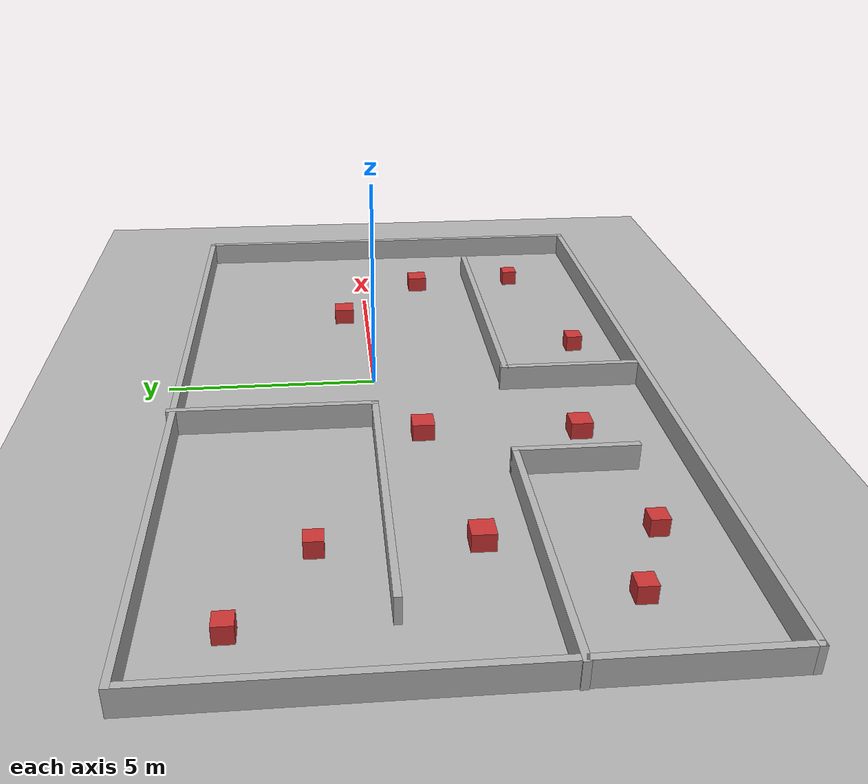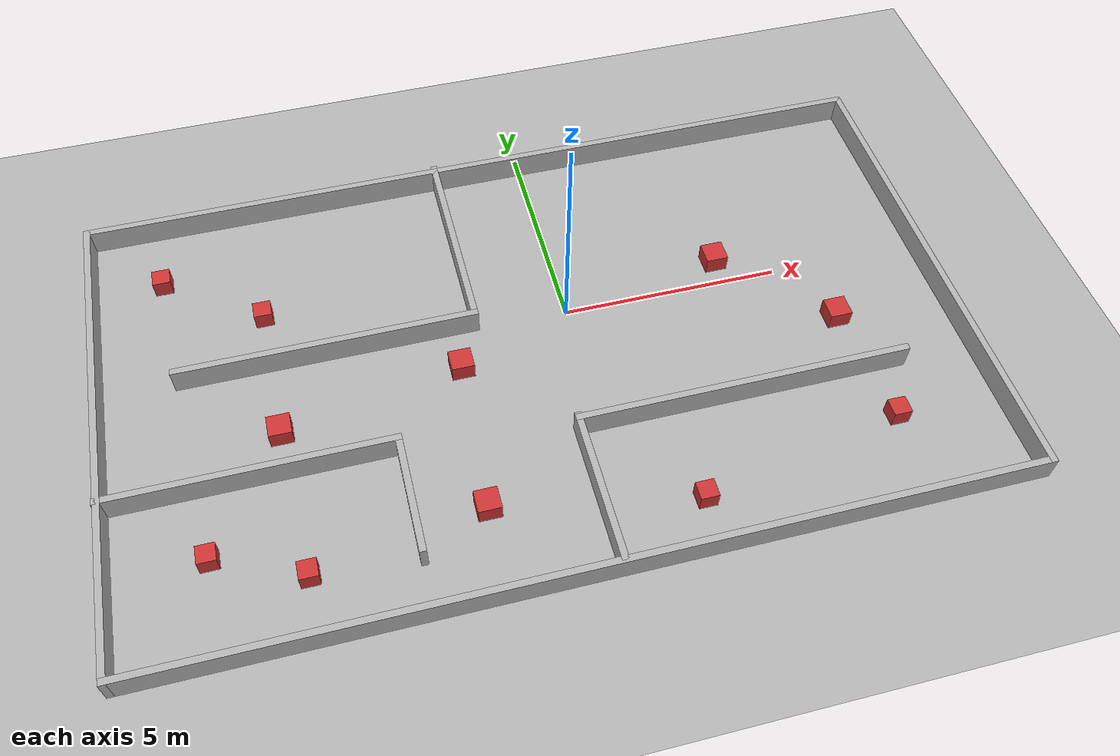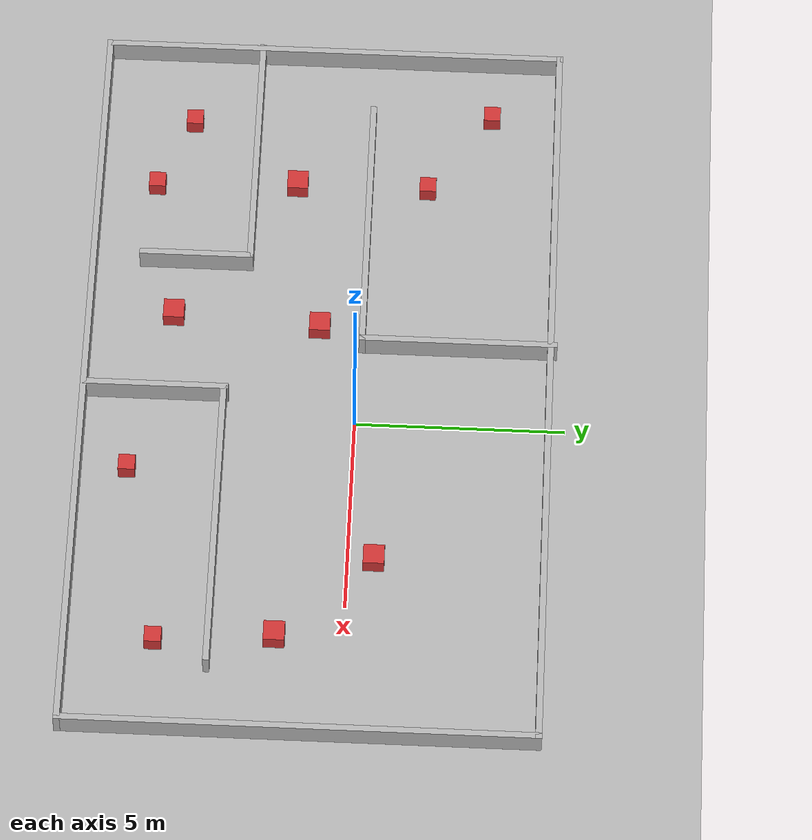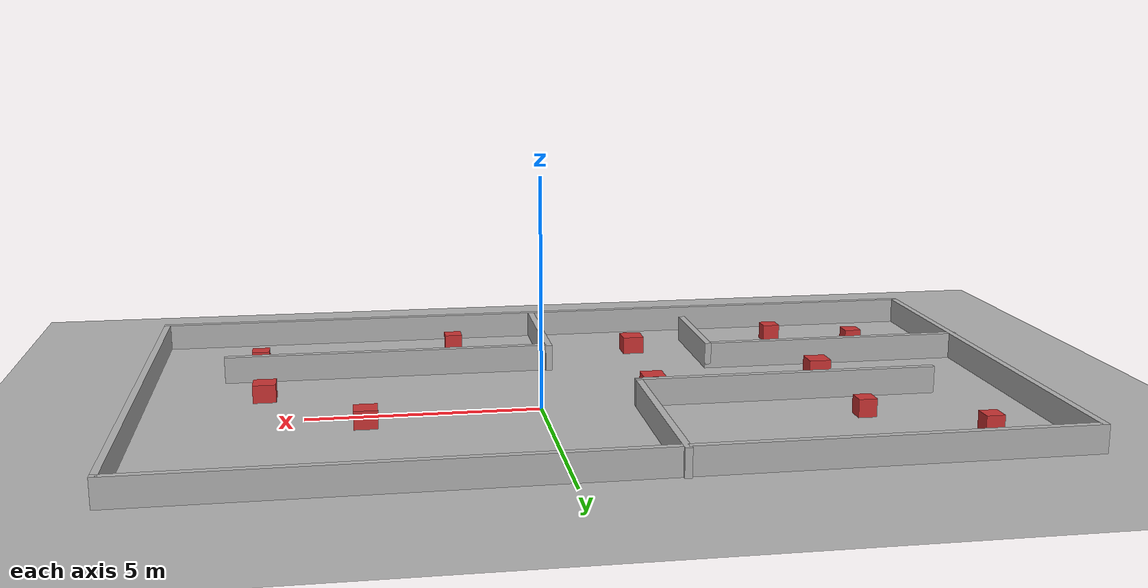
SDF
<sdf version='1.8'>
  <world name='default'>
    <light name='sun' type='directional'>
      <cast_shadows>0</cast_shadows>
      <pose>0 0 10 0 -0 0</pose>
      <diffuse>0.8 0.8 0.8 1</diffuse>
      <specular>0.2 0.2 0.2 1</specular>
      <attenuation>
        <range>1000</range>
        <constant>0.9</constant>
        <linear>0.01</linear>
        <quadratic>0.001</quadratic>
      </attenuation>
      <direction>-0.5 0.1 -0.9</direction>
      <spot>
        <inner_angle>0</inner_angle>
        <outer_angle>0</outer_angle>
        <falloff>0</falloff>
      </spot>
    </light>
    <model name='ground_plane'>
      <static>1</static>
      <link name='link'>
        <collision name='collision'>
          <geometry>
            <plane>
              <normal>0 0 1</normal>
              <size>100 100</size>
            </plane>
          </geometry>
          <surface>
            <friction>
              <ode>
                <mu>100</mu>
                <mu2>50</mu2>
              </ode>
              <torsional>
                <ode/>
              </torsional>
            </friction>
            <contact>
              <ode/>
            </contact>
            <bounce/>
          </surface>
          <max_contacts>10</max_contacts>
        </collision>
        <visual name='visual'>
          <cast_shadows>0</cast_shadows>
          <geometry>
            <plane>
              <normal>0 0 1</normal>
              <size>100 100</size>
            </plane>
          </geometry>
          <material>
            <ambient>0.3 0.3 0.3 1</ambient>
            <diffuse>0.7 0.7 0.7 1</diffuse>
            <specular>0.1 0.1 0.1 1</specular>
          </material>
        </visual>
        <self_collide>0</self_collide>
        <enable_wind>0</enable_wind>
        <kinematic>0</kinematic>
      </link>
    </model>
    <gravity>0 0 -9.8</gravity>
    <magnetic_field>6e-06 2.3e-05 -4.2e-05</magnetic_field>
    <atmosphere type='adiabatic'/>
    <physics type='ode'>
      <max_step_size>0.001</max_step_size>
      <real_time_factor>1</real_time_factor>
      <real_time_update_rate>1000</real_time_update_rate>
    </physics>
    <scene>
      <ambient>0.4 0.4 0.4 1</ambient>
      <background>0.7 0.7 0.7 1</background>
      <shadows>0</shadows>
      <render_engine>ogre2</render_engine>
    </scene>
    <audio>
      <device>default</device>
    </audio>
    <wind/>
    <spherical_coordinates>
      <surface_model>EARTH_WGS84</surface_model>
      <latitude_deg>0</latitude_deg>
      <longitude_deg>0</longitude_deg>
      <elevation>0</elevation>
      <heading_deg>0</heading_deg>
    </spherical_coordinates>
    <model name='room'>
      <pose>-0.972666 -0.903877 0 0 -0 0</pose>
      <link name='outerwall_north'>
        <collision name='outerwall_north_Collision'>
          <geometry>
            <box>
              <size>19 0.15 0.6</size>
            </box>
          </geometry>
          <pose>0 0 0.3 0 -0 0</pose>
          <max_contacts>10</max_contacts>
          <surface>
            <contact>
              <ode/>
            </contact>
            <bounce/>
            <friction>
              <torsional>
                <ode/>
              </torsional>
              <ode/>
            </friction>
          </surface>
        </collision>
        <visual name='outerwall_north_Visual'>
          <pose>0 0 0.3 0 -0 0</pose>
          <geometry>
            <box>
              <size>19 0.15 0.6</size>
            </box>
          </geometry>
          <material>
            <ambient>0.3 0.3 0.3 1</ambient>
            <diffuse>0.7 0.7 0.7 1</diffuse>
            <specular>0.1 0.1 0.1 1</specular>
            <ambient>1 1 1 1</ambient>
          </material>
          <meta>
            <layer>0</layer>
          </meta>
        </visual>
        <pose>0.013921 5.50955 0 0 -0 0</pose>
        <self_collide>0</self_collide>
        <enable_wind>0</enable_wind>
        <kinematic>0</kinematic>
      </link>
      <link name='outerwall_east'>
        <collision name='outerwall_east_Collision'>
          <geometry>
            <box>
              <size>11.25 0.15 0.6</size>
            </box>
          </geometry>
          <pose>0 0 0.3 0 -0 0</pose>
          <max_contacts>10</max_contacts>
          <surface>
            <contact>
              <ode/>
            </contact>
            <bounce/>
            <friction>
              <torsional>
                <ode/>
              </torsional>
              <ode/>
            </friction>
          </surface>
        </collision>
        <visual name='outerwall_east_Visual'>
          <pose>0 0 0.3 0 -0 0</pose>
          <geometry>
            <box>
              <size>11.25 0.15 0.6</size>
            </box>
          </geometry>
          <material>
            <ambient>0.3 0.3 0.3 1</ambient>
            <diffuse>0.7 0.7 0.7 1</diffuse>
            <specular>0.1 0.1 0.1 1</specular>
            <ambient>1 1 1 1</ambient>
          </material>
          <meta>
            <layer>0</layer>
          </meta>
        </visual>
        <pose>9.43892 -0.040455 0 0 -0 -1.5708</pose>
        <self_collide>0</self_collide>
        <enable_wind>0</enable_wind>
        <kinematic>0</kinematic>
      </link>
      <link name='outerwall_south'>
        <collision name='outerwall_south_Collision'>
          <geometry>
            <box>
              <size>19 0.15 0.6</size>
            </box>
          </geometry>
          <pose>0 0 0.3 0 -0 0</pose>
          <max_contacts>10</max_contacts>
          <surface>
            <contact>
              <ode/>
            </contact>
            <bounce/>
            <friction>
              <torsional>
                <ode/>
              </torsional>
              <ode/>
            </friction>
          </surface>
        </collision>
        <visual name='outerwall_south_Visual'>
          <pose>0 0 0.3 0 -0 0</pose>
          <geometry>
            <box>
              <size>19 0.15 0.6</size>
            </box>
          </geometry>
          <material>
            <ambient>0.3 0.3 0.3 1</ambient>
            <diffuse>0.7 0.7 0.7 1</diffuse>
            <specular>0.1 0.1 0.1 1</specular>
            <ambient>1 1 1 1</ambient>
          </material>
          <meta>
            <layer>0</layer>
          </meta>
        </visual>
        <pose>0.013921 -5.59046 0 0 -0 3.14159</pose>
        <self_collide>0</self_collide>
        <enable_wind>0</enable_wind>
        <kinematic>0</kinematic>
      </link>
      <link name='outerwall_west'>
        <collision name='outerwall_west_Collision'>
          <geometry>
            <box>
              <size>11.25 0.15 0.6</size>
            </box>
          </geometry>
          <pose>0 0 0.3 0 -0 0</pose>
          <max_contacts>10</max_contacts>
          <surface>
            <contact>
              <ode/>
            </contact>
            <bounce/>
            <friction>
              <torsional>
                <ode/>
              </torsional>
              <ode/>
            </friction>
          </surface>
        </collision>
        <visual name='outerwall_west_Visual'>
          <pose>0 0 0.3 0 -0 0</pose>
          <geometry>
            <box>
              <size>11.25 0.15 0.6</size>
            </box>
          </geometry>
          <material>
            <ambient>0.3 0.3 0.3 1</ambient>
            <diffuse>0.7 0.7 0.7 1</diffuse>
            <specular>0.1 0.1 0.1 1</specular>
            <ambient>1 1 1 1</ambient>
          </material>
          <meta>
            <layer>0</layer>
          </meta>
        </visual>
        <pose>-9.41108 -0.040455 0 0 -0 1.5708</pose>
        <self_collide>0</self_collide>
        <enable_wind>0</enable_wind>
        <kinematic>0</kinematic>
      </link>
      <link name='room1_wall1'>
        <collision name='room1_wall1_Collision'>
          <geometry>
            <box>
              <size>4.75 0.15 0.6</size>
            </box>
          </geometry>
          <pose>0 0 0.3 0 -0 0</pose>
          <max_contacts>10</max_contacts>
          <surface>
            <contact>
              <ode/>
            </contact>
            <bounce/>
            <friction>
              <torsional>
                <ode/>
              </torsional>
              <ode/>
            </friction>
          </surface>
        </collision>
        <visual name='room1_wall1_Visual'>
          <pose>0 0 0.3 0 -0 0</pose>
          <geometry>
            <box>
              <size>4.75 0.15 0.6</size>
            </box>
          </geometry>
          <material>
            <ambient>0.3 0.3 0.3 1</ambient>
            <diffuse>0.7 0.7 0.7 1</diffuse>
            <specular>0.1 0.1 0.1 1</specular>
            <ambient>1 1 1 1</ambient>
          </material>
          <meta>
            <layer>0</layer>
          </meta>
        </visual>
        <pose>-1.11769 3.29046 0 0 -0 -1.5708</pose>
        <self_collide>0</self_collide>
        <enable_wind>0</enable_wind>
        <kinematic>0</kinematic>
      </link>
      <link name='room1_wall2'>
        <collision name='room1_wall2_Collision'>
          <geometry>
            <box>
              <size>6.75 0.15 0.6</size>
            </box>
          </geometry>
          <pose>0 0 0.3 0 -0 0</pose>
          <max_contacts>10</max_contacts>
          <surface>
            <contact>
              <ode/>
            </contact>
            <bounce/>
            <friction>
              <torsional>
                <ode/>
              </torsional>
              <ode/>
            </friction>
          </surface>
        </collision>
        <visual name='room1_wall2_Visual'>
          <pose>0 0 0.3 0 -0 0</pose>
          <geometry>
            <box>
              <size>6.75 0.15 0.6</size>
            </box>
          </geometry>
          <material>
            <ambient>0.3 0.3 0.3 1</ambient>
            <diffuse>0.7 0.7 0.7 1</diffuse>
            <specular>0.1 0.1 0.1 1</specular>
            <ambient>1 1 1 1</ambient>
          </material>
          <meta>
            <layer>0</layer>
          </meta>
        </visual>
        <pose>-4.41769 0.990456 0 0 -0 3.14159</pose>
        <self_collide>0</self_collide>
        <enable_wind>0</enable_wind>
        <kinematic>0</kinematic>
      </link>
      <link name='room3_wall1'>
        <collision name='room3_wall1_Collision'>
          <geometry>
            <box>
              <size>3.47722 0.15 0.6</size>
            </box>
          </geometry>
          <pose>0 0 0.3 0 -0 0</pose>
          <max_contacts>10</max_contacts>
          <surface>
            <contact>
              <ode/>
            </contact>
            <bounce/>
            <friction>
              <torsional>
                <ode/>
              </torsional>
              <ode/>
            </friction>
          </surface>
        </collision>
        <visual name='room3_wall1_Visual'>
          <pose>0 0 0.3 0 -0 0</pose>
          <geometry>
            <box>
              <size>3.47722 0.15 0.6</size>
            </box>
          </geometry>
          <material>
            <ambient>0.3 0.3 0.3 1</ambient>
            <diffuse>0.7 0.7 0.7 1</diffuse>
            <specular>0.1 0.1 0.1 1</specular>
            <ambient>1 1 1 1</ambient>
          </material>
          <meta>
            <layer>0</layer>
          </meta>
        </visual>
        <pose>0.391784 -3.86799 0 0 -0 1.5708</pose>
        <self_collide>0</self_collide>
        <enable_wind>0</enable_wind>
        <kinematic>0</kinematic>
      </link>
      <link name='room3_wall2'>
        <collision name='room3_wall2_Collision'>
          <geometry>
            <box>
              <size>7.5 0.15 0.6</size>
            </box>
          </geometry>
          <pose>0 0 0.3 0 -0 0</pose>
          <max_contacts>10</max_contacts>
          <surface>
            <contact>
              <ode/>
            </contact>
            <bounce/>
            <friction>
              <torsional>
                <ode/>
              </torsional>
              <ode/>
            </friction>
          </surface>
        </collision>
        <visual name='room3_wall2_Visual'>
          <pose>0 0 0.3 0 -0 0</pose>
          <geometry>
            <box>
              <size>7.5 0.15 0.6</size>
            </box>
          </geometry>
          <material>
            <ambient>0.3 0.3 0.3 1</ambient>
            <diffuse>0.7 0.7 0.7 1</diffuse>
            <specular>0.1 0.1 0.1 1</specular>
            <ambient>1 1 1 1</ambient>
          </material>
          <meta>
            <layer>0</layer>
          </meta>
        </visual>
        <pose>4.06678 -2.24484 0 0 -0 0</pose>
        <self_collide>0</self_collide>
        <enable_wind>0</enable_wind>
        <kinematic>0</kinematic>
      </link>
      <link name='room2_wall1'>
        <collision name='room2_wall1_Collision'>
          <geometry>
            <box>
              <size>6.25 0.15 0.6</size>
            </box>
          </geometry>
          <pose>0 0 0.3 0 -0 0</pose>
          <max_contacts>10</max_contacts>
          <surface>
            <contact>
              <ode/>
            </contact>
            <bounce/>
            <friction>
              <torsional>
                <ode/>
              </torsional>
              <ode/>
            </friction>
          </surface>
        </collision>
        <visual name='room2_wall1_Visual'>
          <pose>0 0 0.3 0 -0 0</pose>
          <geometry>
            <box>
              <size>6.25 0.15 0.6</size>
            </box>
          </geometry>
          <material>
            <ambient>0.3 0.3 0.3 1</ambient>
            <diffuse>0.7 0.7 0.7 1</diffuse>
            <specular>0.1 0.1 0.1 1</specular>
            <ambient>1 1 1 1</ambient>
          </material>
          <meta>
            <layer>0</layer>
          </meta>
        </visual>
        <pose>-6.38892 -1.80969 0 0 -0 0</pose>
        <self_collide>0</self_collide>
        <enable_wind>0</enable_wind>
        <kinematic>0</kinematic>
      </link>
      <link name='room2_wall2'>
        <collision name='room2_wall2_Collision'>
          <geometry>
            <box>
              <size>2.75 0.15 0.6</size>
            </box>
          </geometry>
          <pose>0 0 0.3 0 -0 0</pose>
          <max_contacts>10</max_contacts>
          <surface>
            <contact>
              <ode/>
            </contact>
            <bounce/>
            <friction>
              <torsional>
                <ode/>
              </torsional>
              <ode/>
            </friction>
          </surface>
        </collision>
        <visual name='room2_wall2_Visual'>
          <pose>0 0 0.3 0 -0 0</pose>
          <geometry>
            <box>
              <size>2.75 0.15 0.6</size>
            </box>
          </geometry>
          <material>
            <ambient>0.3 0.3 0.3 1</ambient>
            <diffuse>0.7 0.7 0.7 1</diffuse>
            <specular>0.1 0.1 0.1 1</specular>
            <ambient>1 1 1 1</ambient>
          </material>
          <meta>
            <layer>0</layer>
          </meta>
        </visual>
        <pose>-3.33892 -3.10969 0 0 -0 -1.5708</pose>
        <self_collide>0</self_collide>
        <enable_wind>0</enable_wind>
        <kinematic>0</kinematic>
      </link>
      <static>1</static>
    </model>

    <!-- All Obstacles -->
    <model name='obstacles'>
      <pose>0 0 0 0 0 0</pose>

      <!-- Obstacles in Room 1 (top-left) -->
      <link name='obstacle_room1_1'>
        <pose>-8.81957 3.0005 0.2 0 -0 0</pose>
        <collision name='collision'>
          <geometry>
            <box>
              <size>0.4 0.4 0.4</size>
            </box>
          </geometry>
        </collision>
        <visual name='visual'>
          <geometry>
            <box>
              <size>0.4 0.4 0.4</size>
            </box>
          </geometry>
          <material>
            <ambient>0.8 0.2 0.2 1</ambient>
            <diffuse>0.8 0.2 0.2 1</diffuse>
          </material>
        </visual>
      </link>
      <link name='obstacle_room1_2'>
        <pose>-6.67499 1.5 0.2 0 -0 0</pose>
        <collision name='collision'>
          <geometry>
            <box>
              <size>0.4 0.4 0.4</size>
            </box>
          </geometry>
        </collision>
        <visual name='visual'>
          <geometry>
            <box>
              <size>0.4 0.4 0.4</size>
            </box>
          </geometry>
          <material>
            <ambient>0.8 0.2 0.2 1</ambient>
            <diffuse>0.8 0.2 0.2 1</diffuse>
          </material>
        </visual>
      </link>

      <!-- Obstacles in Room 2 (bottom-left) -->
      <link name='obstacle_room2_1'>
        <pose>-6.53219 -5.0941 0.2 0 -0 0</pose>
        <collision name='collision'>
          <geometry>
            <box>
              <size>0.4 0.4 0.4</size>
            </box>
          </geometry>
        </collision>
        <visual name='visual'>
          <geometry>
            <box>
              <size>0.4 0.4 0.4</size>
            </box>
          </geometry>
          <material>
            <ambient>0.8 0.2 0.2 1</ambient>
            <diffuse>0.8 0.2 0.2 1</diffuse>
          </material>
        </visual>
      </link>
      <link name='obstacle_room2_2'>
        <pose>-8.40528 -4.282 0.2 0 -0 0</pose>
        <collision name='collision'>
          <geometry>
            <box>
              <size>0.4 0.4 0.4</size>
            </box>
          </geometry>
        </collision>
        <visual name='visual'>
          <geometry>
            <box>
              <size>0.4 0.4 0.4</size>
            </box>
          </geometry>
          <material>
            <ambient>0.8 0.2 0.2 1</ambient>
            <diffuse>0.8 0.2 0.2 1</diffuse>
          </material>
        </visual>
      </link>

      <!-- Obstacles in Room 3 (bottom-right) -->
      <link name='obstacle_room3_1'>
        <pose>1.5 -5.33035 0.2 0 -0 0</pose>
        <collision name='collision'>
          <geometry>
            <box>
              <size>0.4 0.4 0.4</size>
            </box>
          </geometry>
        </collision>
        <visual name='visual'>
          <geometry>
            <box>
              <size>0.4 0.4 0.4</size>
            </box>
          </geometry>
          <material>
            <ambient>0.8 0.2 0.2 1</ambient>
            <diffuse>0.8 0.2 0.2 1</diffuse>
          </material>
        </visual>
      </link>
      <link name='obstacle_room3_2'>
        <pose>6.10498 -4.42458 0.2 0 -0 0</pose>
        <collision name='collision'>
          <geometry>
            <box>
              <size>0.4 0.4 0.4</size>
            </box>
          </geometry>
        </collision>
        <visual name='visual'>
          <geometry>
            <box>
              <size>0.4 0.4 0.4</size>
            </box>
          </geometry>
          <material>
            <ambient>0.8 0.2 0.2 1</ambient>
            <diffuse>0.8 0.2 0.2 1</diffuse>
          </material>
        </visual>
      </link>

      <!-- Obstacles in main open space (center area) -->
      <link name='obstacle_main_1'>
        <pose>-2.62819 -0.94889 0.2 0 -0 0</pose>
        <collision name='collision'>
          <geometry>
            <box>
              <size>0.5 0.5 0.4</size>
            </box>
          </geometry>
        </collision>
        <visual name='visual'>
          <geometry>
            <box>
              <size>0.5 0.5 0.4</size>
            </box>
          </geometry>
          <material>
            <ambient>0.8 0.2 0.2 1</ambient>
            <diffuse>0.8 0.2 0.2 1</diffuse>
          </material>
        </visual>
      </link>
      <link name='obstacle_main_2'>
        <pose>5.88202 -1.61372 0.2 0 -0 0</pose>
        <collision name='collision'>
          <geometry>
            <box>
              <size>0.5 0.5 0.4</size>
            </box>
          </geometry>
        </collision>
        <visual name='visual'>
          <geometry>
            <box>
              <size>0.5 0.5 0.4</size>
            </box>
          </geometry>
          <material>
            <ambient>0.8 0.2 0.2 1</ambient>
            <diffuse>0.8 0.2 0.2 1</diffuse>
          </material>
        </visual>
      </link>
      <link name='obstacle_main_3'>
        <pose>3.73616 0.618587 0.2 0 -0 0</pose>
        <collision name='collision'>
          <geometry>
            <box>
              <size>0.5 0.5 0.4</size>
            </box>
          </geometry>
        </collision>
        <visual name='visual'>
          <geometry>
            <box>
              <size>0.5 0.5 0.4</size>
            </box>
          </geometry>
          <material>
            <ambient>0.8 0.2 0.2 1</ambient>
            <diffuse>0.8 0.2 0.2 1</diffuse>
          </material>
        </visual>
      </link>
      <link name='obstacle_main_4'>
        <pose>-2.8383 -4.47271 0.2 0 -0 0</pose>
        <collision name='collision'>
          <geometry>
            <box>
              <size>0.5 0.5 0.4</size>
            </box>
          </geometry>
        </collision>
        <visual name='visual'>
          <geometry>
            <box>
              <size>0.5 0.5 0.4</size>
            </box>
          </geometry>
          <material>
            <ambient>0.8 0.2 0.2 1</ambient>
            <diffuse>0.8 0.2 0.2 1</diffuse>
          </material>
        </visual>
      </link>
      <link name='obstacle_main_5'>
        <pose>-6.67644 -1.67518 0.2 0 -0 0</pose>
        <collision name='collision'>
          <geometry>
            <box>
              <size>0.5 0.5 0.4</size>
            </box>
          </geometry>
        </collision>
        <visual name='visual'>
          <geometry>
            <box>
              <size>0.5 0.5 0.4</size>
            </box>
          </geometry>
          <material>
            <ambient>0.8 0.2 0.2 1</ambient>
            <diffuse>0.8 0.2 0.2 1</diffuse>
          </material>
        </visual>
      </link>

      <static>1</static>
    </model>

    <gui fullscreen='0'>
      <camera name='user_camera'>
        <pose>-0.170626 -11.744 24.2897 0 1.1458 1.5962</pose>
        <view_controller>orbit</view_controller>
        <projection_type>perspective</projection_type>
      </camera>
    </gui>
    <plugin
      filename="ignition-gazebo-physics-system"
      name="gz::sim::systems::Physics">
    </plugin>
    <plugin
      filename="ignition-gazebo-user-commands-system"
      name="gz::sim::systems::UserCommands">
    </plugin>
    <plugin
      filename="ignition-gazebo-scene-broadcaster-system"
      name="gz::sim::systems::SceneBroadcaster">
    </plugin>
    <plugin
      filename="ignition-gazebo-contact-system"
      name="gz::sim::systems::Contact">
    </plugin>
    <plugin
      filename="ignition-gazebo-forcetorque-system"
      name="ignition::gazebo::systems::ForceTorque">
    </plugin>
  </world>
</sdf>
